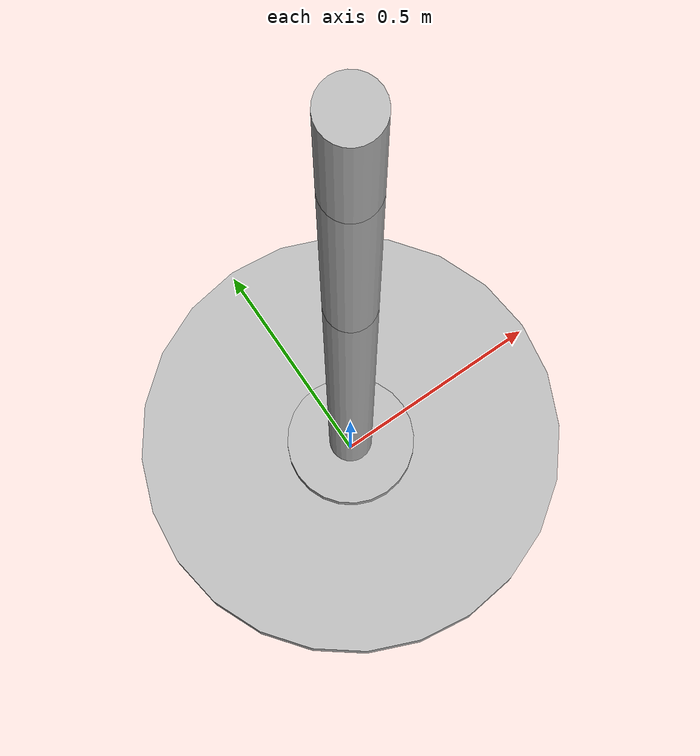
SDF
<?xml version='1.0'?>
<sdf version='1.7'>
  <model name="Arm">
    <static>true</static>
     <link name='base'>
            <pose>0 0 0.05 0 0 0</pose>

            <collision name='collision'>
              <geometry>
                  <cylinder>
                    <radius>0.5</radius>
                    <length>0.1</length>
                </cylinder>
            </geometry>
            </collision>

            <visual name='visual'>
              <geometry>
                <cylinder>
                    <radius>0.5</radius>
                    <length>0.1</length>
                </cylinder>
            </geometry>
            </visual>
     </link>
    <link name='arm1'>
            <pose>0 0 0.125 0 0 0</pose>

            <collision name='collision'>
              <geometry>
                <cylinder>
                    <radius>0.15</radius>
                    <length>0.05</length>
                </cylinder>
            </geometry>
            </collision>

            <visual name='visual'>
              <geometry>
                 <cylinder>
                    <radius>0.15</radius>
                    <length>0.05</length>
                </cylinder>
              </geometry>
           </visual>
        </link>
    <joint name="base_arm1_joint" type="revolute">
        <parent>base</parent>
        <child>arm1</child>
        <pose>0 0 -0.025 0 0 0</pose>
        <axis>
            <xyz>0 0 1</xyz>
        </axis>
    </joint>
    <link name='arm2'>
        <pose>0 0 1.15 0 0 0</pose>

            <collision name='collision'>
              <geometry>
                <cylinder>
                    <radius>0.05</radius>
                    <length>2.0</length>
                </cylinder>
            </geometry>
            </collision>

            <visual name='visual'>
              <geometry>
                 <cylinder>
                    <radius>0.05</radius>
                    <length>2.0</length>
                </cylinder>
              </geometry>
           </visual>
    </link>
    <joint name="arm1_arm2_joint" type="revolute">
        <parent>arm1</parent>
        <child>arm2</child>
        <pose>0 0 -1.0 0 0 0</pose>
        <axis>
            <xyz>1 0 0</xyz>
        </axis>
    </joint>

    <link name='arm3'>
        <pose>0 0 2.65 0 0 0</pose>

            <collision name='collision'>
              <geometry>
                <cylinder>
                    <radius>0.05</radius>
                    <length>1.0</length>
                </cylinder>
            </geometry>
            </collision>

            <visual name='visual'>
              <geometry>
                 <cylinder>
                    <radius>0.05</radius>
                    <length>1.0</length>
                </cylinder>
              </geometry>
           </visual>
    </link>
     <joint name="arm2_arm3_joint" type="revolute">
        <parent>arm2</parent>
        <child>arm3</child>
        <pose>0 0 -0.5 0 0 0</pose>
        <axis>
            <xyz>1 0 0</xyz>
        </axis>
    </joint>

     <link name='arm4'>
        <pose>0 0 3.4 0 0 0</pose>

            <collision name='collision'>
              <geometry>
                <cylinder>
                    <radius>0.05</radius>
                    <length>0.5</length>
                </cylinder>
            </geometry>
            </collision>

            <visual name='visual'>
              <geometry>
                 <cylinder>
                    <radius>0.05</radius>
                    <length>0.5</length>
                </cylinder>
              </geometry>
           </visual>
    </link>

     <joint name="arm3_arm4_joint" type="revolute">
        <parent>arm3</parent>
        <child>arm4</child>
        <pose>0 0 -0.25 0 0 0</pose>
        <axis>
            <xyz>1 0 0</xyz>
        </axis>
    </joint>

  </model>
</sdf>
